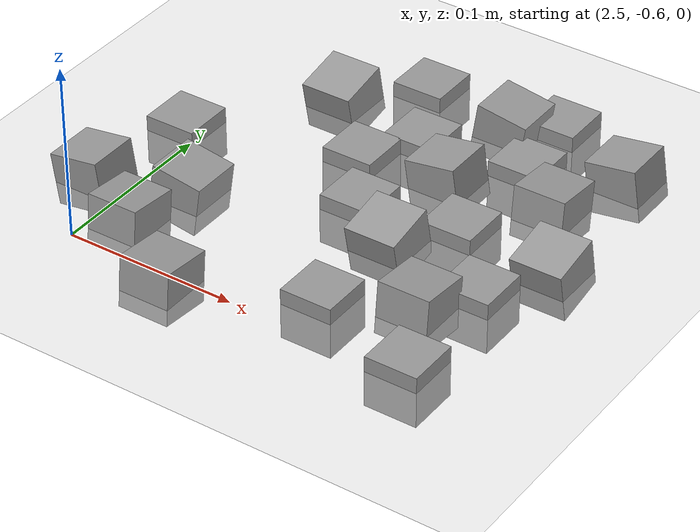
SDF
<sdf version="1.7">
 <world name="default">
  <model name="ground_plane">
   <static>1</static>
   <link name="link">
    <collision name="collision">
     <geometry><plane><normal>0 0 1</normal><size>100 100</size></plane></geometry>
     <surface><friction><ode><mu>100</mu><mu2>50</mu2></ode></friction></surface>
    </collision>
    <visual name="visual">
     <cast_shadows>0</cast_shadows>
     <geometry><plane><normal>0 0 1</normal><size>100 100</size></plane></geometry>
     <material>
      <script><uri>file://media/materials/scripts/gazebo.material</uri><name>Gazebo/Grey</name></script>
     </material>
    </visual>
   </link>
  </model>
  <model name="stone_road_6">
   <link name="link_0_clone_2_clone_2_clone_10">
    <inertial>
     <mass>1</mass>
     <inertia>
      <ixx>0.166667</ixx>
      <ixy>0</ixy>
      <ixz>0</ixz>
      <iyy>0.166667</iyy>
      <iyz>0</iyz>
      <izz>0.166667</izz>
     </inertia>
    </inertial>
    <pose>0.09869 0.163436 0.003778 0 -0.15 0</pose>
    <kinematic>1</kinematic>
    <visual name="visual">
     <geometry><box><size>0.03 0.03 0.03</size></box></geometry>
     <material>
      <lighting>1</lighting>
      <script><uri>file://media/materials/scripts/gazebo.material</uri><name>Gazebo/Grey</name></script>
      <shader type="pixel"><normal_map>__default__</normal_map></shader>
      <ambient>0.3 0.3 0.3 1</ambient>
      <diffuse>0.7 0.7 0.7 1</diffuse>
      <specular>0.01 0.01 0.01 1</specular>
      <emissive>0 0 0 1</emissive>
     </material>
    </visual>
    <collision name="collision">
     <geometry><box><size>0.03 0.03 0.03</size></box></geometry>
     <surface>
      <friction>
       <ode><mu>1</mu><mu2>1</mu2><fdir1>0 0 0</fdir1><slip1>0</slip1><slip2>0</slip2></ode>
       <torsional>
        <coefficient>1</coefficient>
        <patch_radius>0</patch_radius>
        <surface_radius>0</surface_radius>
        <use_patch_radius>1</use_patch_radius>
        <ode><slip>0</slip></ode>
       </torsional>
      </friction>
      <bounce><restitution_coefficient>0</restitution_coefficient><threshold>1e+06</threshold></bounce>
      <contact>
       <collide_without_contact>0</collide_without_contact>
       <collide_without_contact_bitmask>1</collide_without_contact_bitmask>
       <collide_bitmask>1</collide_bitmask>
       <ode>
        <soft_cfm>0</soft_cfm>
        <soft_erp>0.2</soft_erp>
        <kp>1e+13</kp>
        <kd>1</kd>
        <max_vel>0.01</max_vel>
        <min_depth>0</min_depth>
       </ode>
       <bullet>
        <split_impulse>1</split_impulse>
        <split_impulse_penetration_threshold>-0.01</split_impulse_penetration_threshold>
        <soft_cfm>0</soft_cfm>
        <soft_erp>0.2</soft_erp>
        <kp>1e+13</kp>
        <kd>1</kd>
       </bullet>
      </contact>
     </surface>
    </collision>
   </link>
   <link name="link_0_clone_2_clone_2_clone_13_clone">
    <inertial>
     <mass>1</mass>
     <inertia>
      <ixx>0.166667</ixx>
      <ixy>0</ixy>
      <ixz>0</ixz>
      <iyy>0.166667</iyy>
      <iyz>0</iyz>
      <izz>0.166667</izz>
     </inertia>
    </inertial>
    <pose>0.138846 0.140956 0.003778 -0.1 0 0</pose>
    <kinematic>1</kinematic>
    <visual name="visual">
     <geometry><box><size>0.03 0.03 0.03</size></box></geometry>
     <material>
      <lighting>1</lighting>
      <script><uri>file://media/materials/scripts/gazebo.material</uri><name>Gazebo/Grey</name></script>
      <shader type="pixel"><normal_map>__default__</normal_map></shader>
      <ambient>0.3 0.3 0.3 1</ambient>
      <diffuse>0.7 0.7 0.7 1</diffuse>
      <specular>0.01 0.01 0.01 1</specular>
      <emissive>0 0 0 1</emissive>
     </material>
    </visual>
    <collision name="collision">
     <geometry><box><size>0.03 0.03 0.03</size></box></geometry>
     <surface>
      <friction>
       <ode><mu>1</mu><mu2>1</mu2><fdir1>0 0 0</fdir1><slip1>0</slip1><slip2>0</slip2></ode>
       <torsional>
        <coefficient>1</coefficient>
        <patch_radius>0</patch_radius>
        <surface_radius>0</surface_radius>
        <use_patch_radius>1</use_patch_radius>
        <ode><slip>0</slip></ode>
       </torsional>
      </friction>
      <bounce><restitution_coefficient>0</restitution_coefficient><threshold>1e+06</threshold></bounce>
      <contact>
       <collide_without_contact>0</collide_without_contact>
       <collide_without_contact_bitmask>1</collide_without_contact_bitmask>
       <collide_bitmask>1</collide_bitmask>
       <ode>
        <soft_cfm>0</soft_cfm>
        <soft_erp>0.2</soft_erp>
        <kp>1e+13</kp>
        <kd>1</kd>
        <max_vel>0.01</max_vel>
        <min_depth>0</min_depth>
       </ode>
       <bullet>
        <split_impulse>1</split_impulse>
        <split_impulse_penetration_threshold>-0.01</split_impulse_penetration_threshold>
        <soft_cfm>0</soft_cfm>
        <soft_erp>0.2</soft_erp>
        <kp>1e+13</kp>
        <kd>1</kd>
       </bullet>
      </contact>
     </surface>
    </collision>
   </link>
   <link name="link_0_clone_2_clone_2_clone_13_clone_clone">
    <inertial>
     <mass>1</mass>
     <inertia>
      <ixx>0.166667</ixx>
      <ixy>0</ixy>
      <ixz>0</ixz>
      <iyy>0.166667</iyy>
      <iyz>0</iyz>
      <izz>0.166667</izz>
     </inertia>
    </inertial>
    <pose>0.184456 0.108712 0.003778 -0.1 0 0</pose>
    <kinematic>1</kinematic>
    <visual name="visual">
     <geometry><box><size>0.03 0.03 0.03</size></box></geometry>
     <material>
      <lighting>1</lighting>
      <script><uri>file://media/materials/scripts/gazebo.material</uri><name>Gazebo/Grey</name></script>
      <shader type="pixel"><normal_map>__default__</normal_map></shader>
      <ambient>0.3 0.3 0.3 1</ambient>
      <diffuse>0.7 0.7 0.7 1</diffuse>
      <specular>0.01 0.01 0.01 1</specular>
      <emissive>0 0 0 1</emissive>
     </material>
    </visual>
    <collision name="collision">
     <geometry><box><size>0.03 0.03 0.03</size></box></geometry>
     <surface>
      <friction>
       <ode><mu>1</mu><mu2>1</mu2><fdir1>0 0 0</fdir1><slip1>0</slip1><slip2>0</slip2></ode>
       <torsional>
        <coefficient>1</coefficient>
        <patch_radius>0</patch_radius>
        <surface_radius>0</surface_radius>
        <use_patch_radius>1</use_patch_radius>
        <ode><slip>0</slip></ode>
       </torsional>
      </friction>
      <bounce><restitution_coefficient>0</restitution_coefficient><threshold>1e+06</threshold></bounce>
      <contact>
       <collide_without_contact>0</collide_without_contact>
       <collide_without_contact_bitmask>1</collide_without_contact_bitmask>
       <collide_bitmask>1</collide_bitmask>
       <ode>
        <soft_cfm>0</soft_cfm>
        <soft_erp>0.2</soft_erp>
        <kp>1e+13</kp>
        <kd>1</kd>
        <max_vel>0.01</max_vel>
        <min_depth>0</min_depth>
       </ode>
       <bullet>
        <split_impulse>1</split_impulse>
        <split_impulse_penetration_threshold>-0.01</split_impulse_penetration_threshold>
        <soft_cfm>0</soft_cfm>
        <soft_erp>0.2</soft_erp>
        <kp>1e+13</kp>
        <kd>1</kd>
       </bullet>
      </contact>
     </surface>
    </collision>
   </link>
   <link name="link_0_clone_2_clone_2_clone_13_clone_clone_16">
    <inertial>
     <mass>1</mass>
     <inertia>
      <ixx>0.166667</ixx>
      <ixy>0</ixy>
      <ixz>0</ixz>
      <iyy>0.166667</iyy>
      <iyz>0</iyz>
      <izz>0.166667</izz>
     </inertia>
    </inertial>
    <pose>0.108948 0.22849 -0.006222 0 -0 0</pose>
    <kinematic>1</kinematic>
    <visual name="visual">
     <geometry><box><size>0.03 0.03 0.03</size></box></geometry>
     <material>
      <lighting>1</lighting>
      <script><uri>file://media/materials/scripts/gazebo.material</uri><name>Gazebo/Grey</name></script>
      <shader type="pixel"><normal_map>__default__</normal_map></shader>
      <ambient>0.3 0.3 0.3 1</ambient>
      <diffuse>0.7 0.7 0.7 1</diffuse>
      <specular>0.01 0.01 0.01 1</specular>
      <emissive>0 0 0 1</emissive>
     </material>
    </visual>
    <collision name="collision">
     <geometry><box><size>0.03 0.03 0.03</size></box></geometry>
     <surface>
      <friction>
       <ode><mu>1</mu><mu2>1</mu2><fdir1>0 0 0</fdir1><slip1>0</slip1><slip2>0</slip2></ode>
       <torsional>
        <coefficient>1</coefficient>
        <patch_radius>0</patch_radius>
        <surface_radius>0</surface_radius>
        <use_patch_radius>1</use_patch_radius>
        <ode><slip>0</slip></ode>
       </torsional>
      </friction>
      <bounce><restitution_coefficient>0</restitution_coefficient><threshold>1e+06</threshold></bounce>
      <contact>
       <collide_without_contact>0</collide_without_contact>
       <collide_without_contact_bitmask>1</collide_without_contact_bitmask>
       <collide_bitmask>1</collide_bitmask>
       <ode>
        <soft_cfm>0</soft_cfm>
        <soft_erp>0.2</soft_erp>
        <kp>1e+13</kp>
        <kd>1</kd>
        <max_vel>0.01</max_vel>
        <min_depth>0</min_depth>
       </ode>
       <bullet>
        <split_impulse>1</split_impulse>
        <split_impulse_penetration_threshold>-0.01</split_impulse_penetration_threshold>
        <soft_cfm>0</soft_cfm>
        <soft_erp>0.2</soft_erp>
        <kp>1e+13</kp>
        <kd>1</kd>
       </bullet>
      </contact>
     </surface>
    </collision>
   </link>
   <link name="link_0_clone_2_clone_9">
    <inertial>
     <mass>1</mass>
     <inertia>
      <ixx>0.166667</ixx>
      <ixy>0</ixy>
      <ixz>0</ixz>
      <iyy>0.166667</iyy>
      <iyz>0</iyz>
      <izz>0.166667</izz>
     </inertia>
    </inertial>
    <pose>0.148876 0.179752 0.003778 0 0.15 0</pose>
    <kinematic>1</kinematic>
    <visual name="visual">
     <geometry><box><size>0.03 0.03 0.03</size></box></geometry>
     <material>
      <lighting>1</lighting>
      <script><uri>file://media/materials/scripts/gazebo.material</uri><name>Gazebo/Grey</name></script>
      <shader type="pixel"><normal_map>__default__</normal_map></shader>
      <ambient>0.3 0.3 0.3 1</ambient>
      <diffuse>0.7 0.7 0.7 1</diffuse>
      <specular>0.01 0.01 0.01 1</specular>
      <emissive>0 0 0 1</emissive>
     </material>
    </visual>
    <collision name="collision">
     <geometry><box><size>0.03 0.03 0.03</size></box></geometry>
     <surface>
      <friction>
       <ode><mu>1</mu><mu2>1</mu2><fdir1>0 0 0</fdir1><slip1>0</slip1><slip2>0</slip2></ode>
       <torsional>
        <coefficient>1</coefficient>
        <patch_radius>0</patch_radius>
        <surface_radius>0</surface_radius>
        <use_patch_radius>1</use_patch_radius>
        <ode><slip>0</slip></ode>
       </torsional>
      </friction>
      <bounce><restitution_coefficient>0</restitution_coefficient><threshold>1e+06</threshold></bounce>
      <contact>
       <collide_without_contact>0</collide_without_contact>
       <collide_without_contact_bitmask>1</collide_without_contact_bitmask>
       <collide_bitmask>1</collide_bitmask>
       <ode>
        <soft_cfm>0</soft_cfm>
        <soft_erp>0.2</soft_erp>
        <kp>1e+13</kp>
        <kd>1</kd>
        <max_vel>0.01</max_vel>
        <min_depth>0</min_depth>
       </ode>
       <bullet>
        <split_impulse>1</split_impulse>
        <split_impulse_penetration_threshold>-0.01</split_impulse_penetration_threshold>
        <soft_cfm>0</soft_cfm>
        <soft_erp>0.2</soft_erp>
        <kp>1e+13</kp>
        <kd>1</kd>
       </bullet>
      </contact>
     </surface>
    </collision>
   </link>
   <static>0</static>
   <pose>2.379 -0.715905 -0 0 -0 0</pose>
  </model>
  <model name="stone_road_9">
   <link name="link_0_clone_0">
    <inertial>
     <mass>1</mass>
     <inertia>
      <ixx>0.166667</ixx>
      <ixy>0</ixy>
      <ixz>0</ixz>
      <iyy>0.166667</iyy>
      <iyz>0</iyz>
      <izz>0.166667</izz>
     </inertia>
    </inertial>
    <pose>-0.104982 -0.15412 0.003778 0.2 -0 0</pose>
    <kinematic>1</kinematic>
    <visual name="visual">
     <geometry><box><size>0.03 0.03 0.03</size></box></geometry>
     <material>
      <lighting>1</lighting>
      <script><uri>file://media/materials/scripts/gazebo.material</uri><name>Gazebo/Grey</name></script>
      <shader type="pixel"><normal_map>__default__</normal_map></shader>
      <ambient>0.3 0.3 0.3 1</ambient>
      <diffuse>0.7 0.7 0.7 1</diffuse>
      <specular>0.01 0.01 0.01 1</specular>
      <emissive>0 0 0 1</emissive>
     </material>
    </visual>
    <collision name="collision">
     <geometry><box><size>0.03 0.03 0.03</size></box></geometry>
     <surface>
      <friction>
       <ode><mu>1</mu><mu2>1</mu2><fdir1>0 0 0</fdir1><slip1>0</slip1><slip2>0</slip2></ode>
       <torsional>
        <coefficient>1</coefficient>
        <patch_radius>0</patch_radius>
        <surface_radius>0</surface_radius>
        <use_patch_radius>1</use_patch_radius>
        <ode><slip>0</slip></ode>
       </torsional>
      </friction>
      <bounce><restitution_coefficient>0</restitution_coefficient><threshold>1e+06</threshold></bounce>
      <contact>
       <collide_without_contact>0</collide_without_contact>
       <collide_without_contact_bitmask>1</collide_without_contact_bitmask>
       <collide_bitmask>1</collide_bitmask>
       <ode>
        <soft_cfm>0</soft_cfm>
        <soft_erp>0.2</soft_erp>
        <kp>1e+13</kp>
        <kd>1</kd>
        <max_vel>0.01</max_vel>
        <min_depth>0</min_depth>
       </ode>
       <bullet>
        <split_impulse>1</split_impulse>
        <split_impulse_penetration_threshold>-0.01</split_impulse_penetration_threshold>
        <soft_cfm>0</soft_cfm>
        <soft_erp>0.2</soft_erp>
        <kp>1e+13</kp>
        <kd>1</kd>
       </bullet>
      </contact>
     </surface>
    </collision>
   </link>
   <link name="link_0_clone_1">
    <inertial>
     <mass>1</mass>
     <inertia>
      <ixx>0.166667</ixx>
      <ixy>0</ixy>
      <ixz>0</ixz>
      <iyy>0.166667</iyy>
      <iyz>0</iyz>
      <izz>0.166667</izz>
     </inertia>
    </inertial>
    <pose>-0.022921 -0.129606 0.003778 0.2 -0 0</pose>
    <kinematic>1</kinematic>
    <visual name="visual">
     <geometry><box><size>0.03 0.03 0.03</size></box></geometry>
     <material>
      <lighting>1</lighting>
      <script><uri>file://media/materials/scripts/gazebo.material</uri><name>Gazebo/Grey</name></script>
      <shader type="pixel"><normal_map>__default__</normal_map></shader>
      <ambient>0.3 0.3 0.3 1</ambient>
      <diffuse>0.7 0.7 0.7 1</diffuse>
      <specular>0.01 0.01 0.01 1</specular>
      <emissive>0 0 0 1</emissive>
     </material>
    </visual>
    <collision name="collision">
     <geometry><box><size>0.03 0.03 0.03</size></box></geometry>
     <surface>
      <friction>
       <ode><mu>1</mu><mu2>1</mu2><fdir1>0 0 0</fdir1><slip1>0</slip1><slip2>0</slip2></ode>
       <torsional>
        <coefficient>1</coefficient>
        <patch_radius>0</patch_radius>
        <surface_radius>0</surface_radius>
        <use_patch_radius>1</use_patch_radius>
        <ode><slip>0</slip></ode>
       </torsional>
      </friction>
      <bounce><restitution_coefficient>0</restitution_coefficient><threshold>1e+06</threshold></bounce>
      <contact>
       <collide_without_contact>0</collide_without_contact>
       <collide_without_contact_bitmask>1</collide_without_contact_bitmask>
       <collide_bitmask>1</collide_bitmask>
       <ode>
        <soft_cfm>0</soft_cfm>
        <soft_erp>0.2</soft_erp>
        <kp>1e+13</kp>
        <kd>1</kd>
        <max_vel>0.01</max_vel>
        <min_depth>0</min_depth>
       </ode>
       <bullet>
        <split_impulse>1</split_impulse>
        <split_impulse_penetration_threshold>-0.01</split_impulse_penetration_threshold>
        <soft_cfm>0</soft_cfm>
        <soft_erp>0.2</soft_erp>
        <kp>1e+13</kp>
        <kd>1</kd>
       </bullet>
      </contact>
     </surface>
    </collision>
   </link>
   <link name="link_0_clone_2_clone">
    <inertial>
     <mass>1</mass>
     <inertia>
      <ixx>0.166667</ixx>
      <ixy>0</ixy>
      <ixz>0</ixz>
      <iyy>0.166667</iyy>
      <iyz>0</iyz>
      <izz>0.166667</izz>
     </inertia>
    </inertial>
    <pose>-0.10771 -0.03187 0.003778 0 0.15 0</pose>
    <kinematic>1</kinematic>
    <visual name="visual">
     <geometry><box><size>0.03 0.03 0.03</size></box></geometry>
     <material>
      <lighting>1</lighting>
      <script><uri>file://media/materials/scripts/gazebo.material</uri><name>Gazebo/Grey</name></script>
      <shader type="pixel"><normal_map>__default__</normal_map></shader>
      <ambient>0.3 0.3 0.3 1</ambient>
      <diffuse>0.7 0.7 0.7 1</diffuse>
      <specular>0.01 0.01 0.01 1</specular>
      <emissive>0 0 0 1</emissive>
     </material>
    </visual>
    <collision name="collision">
     <geometry><box><size>0.03 0.03 0.03</size></box></geometry>
     <surface>
      <friction>
       <ode><mu>1</mu><mu2>1</mu2><fdir1>0 0 0</fdir1><slip1>0</slip1><slip2>0</slip2></ode>
       <torsional>
        <coefficient>1</coefficient>
        <patch_radius>0</patch_radius>
        <surface_radius>0</surface_radius>
        <use_patch_radius>1</use_patch_radius>
        <ode><slip>0</slip></ode>
       </torsional>
      </friction>
      <bounce><restitution_coefficient>0</restitution_coefficient><threshold>1e+06</threshold></bounce>
      <contact>
       <collide_without_contact>0</collide_without_contact>
       <collide_without_contact_bitmask>1</collide_without_contact_bitmask>
       <collide_bitmask>1</collide_bitmask>
       <ode>
        <soft_cfm>0</soft_cfm>
        <soft_erp>0.2</soft_erp>
        <kp>1e+13</kp>
        <kd>1</kd>
        <max_vel>0.01</max_vel>
        <min_depth>0</min_depth>
       </ode>
       <bullet>
        <split_impulse>1</split_impulse>
        <split_impulse_penetration_threshold>-0.01</split_impulse_penetration_threshold>
        <soft_cfm>0</soft_cfm>
        <soft_erp>0.2</soft_erp>
        <kp>1e+13</kp>
        <kd>1</kd>
       </bullet>
      </contact>
     </surface>
    </collision>
   </link>
   <link name="link_0_clone_2_clone_2_clone_0">
    <inertial>
     <mass>1</mass>
     <inertia>
      <ixx>0.166667</ixx>
      <ixy>0</ixy>
      <ixz>0</ixz>
      <iyy>0.166667</iyy>
      <iyz>0</iyz>
      <izz>0.166667</izz>
     </inertia>
    </inertial>
    <pose>-0.032874 -0.039714 0.003778 0 -0.15 0</pose>
    <kinematic>1</kinematic>
    <visual name="visual">
     <geometry><box><size>0.03 0.03 0.03</size></box></geometry>
     <material>
      <lighting>1</lighting>
      <script><uri>file://media/materials/scripts/gazebo.material</uri><name>Gazebo/Grey</name></script>
      <shader type="pixel"><normal_map>__default__</normal_map></shader>
      <ambient>0.3 0.3 0.3 1</ambient>
      <diffuse>0.7 0.7 0.7 1</diffuse>
      <specular>0.01 0.01 0.01 1</specular>
      <emissive>0 0 0 1</emissive>
     </material>
    </visual>
    <collision name="collision">
     <geometry><box><size>0.03 0.03 0.03</size></box></geometry>
     <surface>
      <friction>
       <ode><mu>1</mu><mu2>1</mu2><fdir1>0 0 0</fdir1><slip1>0</slip1><slip2>0</slip2></ode>
       <torsional>
        <coefficient>1</coefficient>
        <patch_radius>0</patch_radius>
        <surface_radius>0</surface_radius>
        <use_patch_radius>1</use_patch_radius>
        <ode><slip>0</slip></ode>
       </torsional>
      </friction>
      <bounce><restitution_coefficient>0</restitution_coefficient><threshold>1e+06</threshold></bounce>
      <contact>
       <collide_without_contact>0</collide_without_contact>
       <collide_without_contact_bitmask>1</collide_without_contact_bitmask>
       <collide_bitmask>1</collide_bitmask>
       <ode>
        <soft_cfm>0</soft_cfm>
        <soft_erp>0.2</soft_erp>
        <kp>1e+13</kp>
        <kd>1</kd>
        <max_vel>0.01</max_vel>
        <min_depth>0</min_depth>
       </ode>
       <bullet>
        <split_impulse>1</split_impulse>
        <split_impulse_penetration_threshold>-0.01</split_impulse_penetration_threshold>
        <soft_cfm>0</soft_cfm>
        <soft_erp>0.2</soft_erp>
        <kp>1e+13</kp>
        <kd>1</kd>
       </bullet>
      </contact>
     </surface>
    </collision>
   </link>
   <link name="link_0_clone_2_clone_2_clone_13_clone_clone_16_clone_10">
    <inertial>
     <mass>1</mass>
     <inertia>
      <ixx>0.166667</ixx>
      <ixy>0</ixy>
      <ixz>0</ixz>
      <iyy>0.166667</iyy>
      <iyz>0</iyz>
      <izz>0.166667</izz>
     </inertia>
    </inertial>
    <pose>-0.082186 -0.05781 -0.006222 0 -0 0</pose>
    <kinematic>1</kinematic>
    <visual name="visual">
     <geometry><box><size>0.03 0.03 0.03</size></box></geometry>
     <material>
      <lighting>1</lighting>
      <script><uri>file://media/materials/scripts/gazebo.material</uri><name>Gazebo/Grey</name></script>
      <shader type="pixel"><normal_map>__default__</normal_map></shader>
      <ambient>0.3 0.3 0.3 1</ambient>
      <diffuse>0.7 0.7 0.7 1</diffuse>
      <specular>0.01 0.01 0.01 1</specular>
      <emissive>0 0 0 1</emissive>
     </material>
    </visual>
    <collision name="collision">
     <geometry><box><size>0.03 0.03 0.03</size></box></geometry>
     <surface>
      <friction>
       <ode><mu>1</mu><mu2>1</mu2><fdir1>0 0 0</fdir1><slip1>0</slip1><slip2>0</slip2></ode>
       <torsional>
        <coefficient>1</coefficient>
        <patch_radius>0</patch_radius>
        <surface_radius>0</surface_radius>
        <use_patch_radius>1</use_patch_radius>
        <ode><slip>0</slip></ode>
       </torsional>
      </friction>
      <bounce><restitution_coefficient>0</restitution_coefficient><threshold>1e+06</threshold></bounce>
      <contact>
       <collide_without_contact>0</collide_without_contact>
       <collide_without_contact_bitmask>1</collide_without_contact_bitmask>
       <collide_bitmask>1</collide_bitmask>
       <ode>
        <soft_cfm>0</soft_cfm>
        <soft_erp>0.2</soft_erp>
        <kp>1e+13</kp>
        <kd>1</kd>
        <max_vel>0.01</max_vel>
        <min_depth>0</min_depth>
       </ode>
       <bullet>
        <split_impulse>1</split_impulse>
        <split_impulse_penetration_threshold>-0.01</split_impulse_penetration_threshold>
        <soft_cfm>0</soft_cfm>
        <soft_erp>0.2</soft_erp>
        <kp>1e+13</kp>
        <kd>1</kd>
       </bullet>
      </contact>
     </surface>
    </collision>
   </link>
   <link name="link_0_clone_2_clone_2_clone_13_clone_clone_16_clone_11">
    <inertial>
     <mass>1</mass>
     <inertia>
      <ixx>0.166667</ixx>
      <ixy>0</ixy>
      <ixz>0</ixz>
      <iyy>0.166667</iyy>
      <iyz>0</iyz>
      <izz>0.166667</izz>
     </inertia>
    </inertial>
    <pose>-0.141844 -0.066911 -0.006222 0 -0 0</pose>
    <kinematic>1</kinematic>
    <visual name="visual">
     <geometry><box><size>0.03 0.03 0.03</size></box></geometry>
     <material>
      <lighting>1</lighting>
      <script><uri>file://media/materials/scripts/gazebo.material</uri><name>Gazebo/Grey</name></script>
      <shader type="pixel"><normal_map>__default__</normal_map></shader>
      <ambient>0.3 0.3 0.3 1</ambient>
      <diffuse>0.7 0.7 0.7 1</diffuse>
      <specular>0.01 0.01 0.01 1</specular>
      <emissive>0 0 0 1</emissive>
     </material>
    </visual>
    <collision name="collision">
     <geometry><box><size>0.03 0.03 0.03</size></box></geometry>
     <surface>
      <friction>
       <ode><mu>1</mu><mu2>1</mu2><fdir1>0 0 0</fdir1><slip1>0</slip1><slip2>0</slip2></ode>
       <torsional>
        <coefficient>1</coefficient>
        <patch_radius>0</patch_radius>
        <surface_radius>0</surface_radius>
        <use_patch_radius>1</use_patch_radius>
        <ode><slip>0</slip></ode>
       </torsional>
      </friction>
      <bounce><restitution_coefficient>0</restitution_coefficient><threshold>1e+06</threshold></bounce>
      <contact>
       <collide_without_contact>0</collide_without_contact>
       <collide_without_contact_bitmask>1</collide_without_contact_bitmask>
       <collide_bitmask>1</collide_bitmask>
       <ode>
        <soft_cfm>0</soft_cfm>
        <soft_erp>0.2</soft_erp>
        <kp>1e+13</kp>
        <kd>1</kd>
        <max_vel>0.01</max_vel>
        <min_depth>0</min_depth>
       </ode>
       <bullet>
        <split_impulse>1</split_impulse>
        <split_impulse_penetration_threshold>-0.01</split_impulse_penetration_threshold>
        <soft_cfm>0</soft_cfm>
        <soft_erp>0.2</soft_erp>
        <kp>1e+13</kp>
        <kd>1</kd>
       </bullet>
      </contact>
     </surface>
    </collision>
   </link>
   <link name="link_0_clone_2_clone_2_clone_13_clone_clone_16_clone_12">
    <inertial>
     <mass>1</mass>
     <inertia>
      <ixx>0.166667</ixx>
      <ixy>0</ixy>
      <ixz>0</ixz>
      <iyy>0.166667</iyy>
      <iyz>0</iyz>
      <izz>0.166667</izz>
     </inertia>
    </inertial>
    <pose>-0.164908 -0.022947 -0.006222 0 -0 0</pose>
    <kinematic>1</kinematic>
    <visual name="visual">
     <geometry><box><size>0.03 0.03 0.03</size></box></geometry>
     <material>
      <lighting>1</lighting>
      <script><uri>file://media/materials/scripts/gazebo.material</uri><name>Gazebo/Grey</name></script>
      <shader type="pixel"><normal_map>__default__</normal_map></shader>
      <ambient>0.3 0.3 0.3 1</ambient>
      <diffuse>0.7 0.7 0.7 1</diffuse>
      <specular>0.01 0.01 0.01 1</specular>
      <emissive>0 0 0 1</emissive>
     </material>
    </visual>
    <collision name="collision">
     <geometry><box><size>0.03 0.03 0.03</size></box></geometry>
     <surface>
      <friction>
       <ode><mu>1</mu><mu2>1</mu2><fdir1>0 0 0</fdir1><slip1>0</slip1><slip2>0</slip2></ode>
       <torsional>
        <coefficient>1</coefficient>
        <patch_radius>0</patch_radius>
        <surface_radius>0</surface_radius>
        <use_patch_radius>1</use_patch_radius>
        <ode><slip>0</slip></ode>
       </torsional>
      </friction>
      <bounce><restitution_coefficient>0</restitution_coefficient><threshold>1e+06</threshold></bounce>
      <contact>
       <collide_without_contact>0</collide_without_contact>
       <collide_without_contact_bitmask>1</collide_without_contact_bitmask>
       <collide_bitmask>1</collide_bitmask>
       <ode>
        <soft_cfm>0</soft_cfm>
        <soft_erp>0.2</soft_erp>
        <kp>1e+13</kp>
        <kd>1</kd>
        <max_vel>0.01</max_vel>
        <min_depth>0</min_depth>
       </ode>
       <bullet>
        <split_impulse>1</split_impulse>
        <split_impulse_penetration_threshold>-0.01</split_impulse_penetration_threshold>
        <soft_cfm>0</soft_cfm>
        <soft_erp>0.2</soft_erp>
        <kp>1e+13</kp>
        <kd>1</kd>
       </bullet>
      </contact>
     </surface>
    </collision>
   </link>
   <link name="link_0_clone_2_clone_2_clone_13_clone_clone_16_clone_27">
    <inertial>
     <mass>1</mass>
     <inertia>
      <ixx>0.166667</ixx>
      <ixy>0</ixy>
      <ixz>0</ixz>
      <iyy>0.166667</iyy>
      <iyz>0</iyz>
      <izz>0.166667</izz>
     </inertia>
    </inertial>
    <pose>-0.137316 -0.132225 -0.006222 0 -0 0</pose>
    <kinematic>1</kinematic>
    <visual name="visual">
     <geometry><box><size>0.03 0.03 0.03</size></box></geometry>
     <material>
      <lighting>1</lighting>
      <script><uri>file://media/materials/scripts/gazebo.material</uri><name>Gazebo/Grey</name></script>
      <shader type="pixel"><normal_map>__default__</normal_map></shader>
      <ambient>0.3 0.3 0.3 1</ambient>
      <diffuse>0.7 0.7 0.7 1</diffuse>
      <specular>0.01 0.01 0.01 1</specular>
      <emissive>0 0 0 1</emissive>
     </material>
    </visual>
    <collision name="collision">
     <geometry><box><size>0.03 0.03 0.03</size></box></geometry>
     <surface>
      <friction>
       <ode><mu>1</mu><mu2>1</mu2><fdir1>0 0 0</fdir1><slip1>0</slip1><slip2>0</slip2></ode>
       <torsional>
        <coefficient>1</coefficient>
        <patch_radius>0</patch_radius>
        <surface_radius>0</surface_radius>
        <use_patch_radius>1</use_patch_radius>
        <ode><slip>0</slip></ode>
       </torsional>
      </friction>
      <bounce><restitution_coefficient>0</restitution_coefficient><threshold>1e+06</threshold></bounce>
      <contact>
       <collide_without_contact>0</collide_without_contact>
       <collide_without_contact_bitmask>1</collide_without_contact_bitmask>
       <collide_bitmask>1</collide_bitmask>
       <ode>
        <soft_cfm>0</soft_cfm>
        <soft_erp>0.2</soft_erp>
        <kp>1e+13</kp>
        <kd>1</kd>
        <max_vel>0.01</max_vel>
        <min_depth>0</min_depth>
       </ode>
       <bullet>
        <split_impulse>1</split_impulse>
        <split_impulse_penetration_threshold>-0.01</split_impulse_penetration_threshold>
        <soft_cfm>0</soft_cfm>
        <soft_erp>0.2</soft_erp>
        <kp>1e+13</kp>
        <kd>1</kd>
       </bullet>
      </contact>
     </surface>
    </collision>
   </link>
   <link name="link_0_clone_2_clone_2_clone_13_clone_clone_16_clone_28">
    <inertial>
     <mass>1</mass>
     <inertia>
      <ixx>0.166667</ixx>
      <ixy>0</ixy>
      <ixz>0</ixz>
      <iyy>0.166667</iyy>
      <iyz>0</iyz>
      <izz>0.166667</izz>
     </inertia>
    </inertial>
    <pose>-0.10708 -0.209042 -0.006222 0 -0 0</pose>
    <kinematic>1</kinematic>
    <visual name="visual">
     <geometry><box><size>0.03 0.03 0.03</size></box></geometry>
     <material>
      <lighting>1</lighting>
      <script><uri>file://media/materials/scripts/gazebo.material</uri><name>Gazebo/Grey</name></script>
      <shader type="pixel"><normal_map>__default__</normal_map></shader>
      <ambient>0.3 0.3 0.3 1</ambient>
      <diffuse>0.7 0.7 0.7 1</diffuse>
      <specular>0.01 0.01 0.01 1</specular>
      <emissive>0 0 0 1</emissive>
     </material>
    </visual>
    <collision name="collision">
     <geometry><box><size>0.03 0.03 0.03</size></box></geometry>
     <surface>
      <friction>
       <ode><mu>1</mu><mu2>1</mu2><fdir1>0 0 0</fdir1><slip1>0</slip1><slip2>0</slip2></ode>
       <torsional>
        <coefficient>1</coefficient>
        <patch_radius>0</patch_radius>
        <surface_radius>0</surface_radius>
        <use_patch_radius>1</use_patch_radius>
        <ode><slip>0</slip></ode>
       </torsional>
      </friction>
      <bounce><restitution_coefficient>0</restitution_coefficient><threshold>1e+06</threshold></bounce>
      <contact>
       <collide_without_contact>0</collide_without_contact>
       <collide_without_contact_bitmask>1</collide_without_contact_bitmask>
       <collide_bitmask>1</collide_bitmask>
       <ode>
        <soft_cfm>0</soft_cfm>
        <soft_erp>0.2</soft_erp>
        <kp>1e+13</kp>
        <kd>1</kd>
        <max_vel>0.01</max_vel>
        <min_depth>0</min_depth>
       </ode>
       <bullet>
        <split_impulse>1</split_impulse>
        <split_impulse_penetration_threshold>-0.01</split_impulse_penetration_threshold>
        <soft_cfm>0</soft_cfm>
        <soft_erp>0.2</soft_erp>
        <kp>1e+13</kp>
        <kd>1</kd>
       </bullet>
      </contact>
     </surface>
    </collision>
   </link>
   <link name="link_0_clone_2_clone_2_clone_13_clone_clone_16_clone_29">
    <inertial>
     <mass>1</mass>
     <inertia>
      <ixx>0.166667</ixx>
      <ixy>0</ixy>
      <ixz>0</ixz>
      <iyy>0.166667</iyy>
      <iyz>0</iyz>
      <izz>0.166667</izz>
     </inertia>
    </inertial>
    <pose>-0.042964 -0.229632 -0.006222 0 -0 0</pose>
    <kinematic>1</kinematic>
    <visual name="visual">
     <geometry><box><size>0.03 0.03 0.03</size></box></geometry>
     <material>
      <lighting>1</lighting>
      <script><uri>file://media/materials/scripts/gazebo.material</uri><name>Gazebo/Grey</name></script>
      <shader type="pixel"><normal_map>__default__</normal_map></shader>
      <ambient>0.3 0.3 0.3 1</ambient>
      <diffuse>0.7 0.7 0.7 1</diffuse>
      <specular>0.01 0.01 0.01 1</specular>
      <emissive>0 0 0 1</emissive>
     </material>
    </visual>
    <collision name="collision">
     <geometry><box><size>0.03 0.03 0.03</size></box></geometry>
     <surface>
      <friction>
       <ode><mu>1</mu><mu2>1</mu2><fdir1>0 0 0</fdir1><slip1>0</slip1><slip2>0</slip2></ode>
       <torsional>
        <coefficient>1</coefficient>
        <patch_radius>0</patch_radius>
        <surface_radius>0</surface_radius>
        <use_patch_radius>1</use_patch_radius>
        <ode><slip>0</slip></ode>
       </torsional>
      </friction>
      <bounce><restitution_coefficient>0</restitution_coefficient><threshold>1e+06</threshold></bounce>
      <contact>
       <collide_without_contact>0</collide_without_contact>
       <collide_without_contact_bitmask>1</collide_without_contact_bitmask>
       <collide_bitmask>1</collide_bitmask>
       <ode>
        <soft_cfm>0</soft_cfm>
        <soft_erp>0.2</soft_erp>
        <kp>1e+13</kp>
        <kd>1</kd>
        <max_vel>0.01</max_vel>
        <min_depth>0</min_depth>
       </ode>
       <bullet>
        <split_impulse>1</split_impulse>
        <split_impulse_penetration_threshold>-0.01</split_impulse_penetration_threshold>
        <soft_cfm>0</soft_cfm>
        <soft_erp>0.2</soft_erp>
        <kp>1e+13</kp>
        <kd>1</kd>
       </bullet>
      </contact>
     </surface>
    </collision>
   </link>
   <link name="link_0_clone_2_clone_2_clone_13_clone_clone_16_clone_30">
    <inertial>
     <mass>1</mass>
     <inertia>
      <ixx>0.166667</ixx>
      <ixy>0</ixy>
      <ixz>0</ixz>
      <iyy>0.166667</iyy>
      <iyz>0</iyz>
      <izz>0.166667</izz>
     </inertia>
    </inertial>
    <pose>-0.160879 -0.095951 -0.006222 0 -0 0</pose>
    <kinematic>1</kinematic>
    <visual name="visual">
     <geometry><box><size>0.03 0.03 0.03</size></box></geometry>
     <material>
      <lighting>1</lighting>
      <script><uri>file://media/materials/scripts/gazebo.material</uri><name>Gazebo/Grey</name></script>
      <shader type="pixel"><normal_map>__default__</normal_map></shader>
      <ambient>0.3 0.3 0.3 1</ambient>
      <diffuse>0.7 0.7 0.7 1</diffuse>
      <specular>0.01 0.01 0.01 1</specular>
      <emissive>0 0 0 1</emissive>
     </material>
    </visual>
    <collision name="collision">
     <geometry><box><size>0.03 0.03 0.03</size></box></geometry>
     <surface>
      <friction>
       <ode><mu>1</mu><mu2>1</mu2><fdir1>0 0 0</fdir1><slip1>0</slip1><slip2>0</slip2></ode>
       <torsional>
        <coefficient>1</coefficient>
        <patch_radius>0</patch_radius>
        <surface_radius>0</surface_radius>
        <use_patch_radius>1</use_patch_radius>
        <ode><slip>0</slip></ode>
       </torsional>
      </friction>
      <bounce><restitution_coefficient>0</restitution_coefficient><threshold>1e+06</threshold></bounce>
      <contact>
       <collide_without_contact>0</collide_without_contact>
       <collide_without_contact_bitmask>1</collide_without_contact_bitmask>
       <collide_bitmask>1</collide_bitmask>
       <ode>
        <soft_cfm>0</soft_cfm>
        <soft_erp>0.2</soft_erp>
        <kp>1e+13</kp>
        <kd>1</kd>
        <max_vel>0.01</max_vel>
        <min_depth>0</min_depth>
       </ode>
       <bullet>
        <split_impulse>1</split_impulse>
        <split_impulse_penetration_threshold>-0.01</split_impulse_penetration_threshold>
        <soft_cfm>0</soft_cfm>
        <soft_erp>0.2</soft_erp>
        <kp>1e+13</kp>
        <kd>1</kd>
       </bullet>
      </contact>
     </surface>
    </collision>
   </link>
   <link name="link_0_clone_2_clone_2_clone_13_clone_clone_16_clone_5">
    <inertial>
     <mass>1</mass>
     <inertia>
      <ixx>0.166667</ixx>
      <ixy>0</ixy>
      <ixz>0</ixz>
      <iyy>0.166667</iyy>
      <iyz>0</iyz>
      <izz>0.166667</izz>
     </inertia>
    </inertial>
    <pose>-0.086674 -0.014784 -0.006222 0 -0 0</pose>
    <kinematic>1</kinematic>
    <visual name="visual">
     <geometry><box><size>0.03 0.03 0.03</size></box></geometry>
     <material>
      <lighting>1</lighting>
      <script><uri>file://media/materials/scripts/gazebo.material</uri><name>Gazebo/Grey</name></script>
      <shader type="pixel"><normal_map>__default__</normal_map></shader>
      <ambient>0.3 0.3 0.3 1</ambient>
      <diffuse>0.7 0.7 0.7 1</diffuse>
      <specular>0.01 0.01 0.01 1</specular>
      <emissive>0 0 0 1</emissive>
     </material>
    </visual>
    <collision name="collision">
     <geometry><box><size>0.03 0.03 0.03</size></box></geometry>
     <surface>
      <friction>
       <ode><mu>1</mu><mu2>1</mu2><fdir1>0 0 0</fdir1><slip1>0</slip1><slip2>0</slip2></ode>
       <torsional>
        <coefficient>1</coefficient>
        <patch_radius>0</patch_radius>
        <surface_radius>0</surface_radius>
        <use_patch_radius>1</use_patch_radius>
        <ode><slip>0</slip></ode>
       </torsional>
      </friction>
      <bounce><restitution_coefficient>0</restitution_coefficient><threshold>1e+06</threshold></bounce>
      <contact>
       <collide_without_contact>0</collide_without_contact>
       <collide_without_contact_bitmask>1</collide_without_contact_bitmask>
       <collide_bitmask>1</collide_bitmask>
       <ode>
        <soft_cfm>0</soft_cfm>
        <soft_erp>0.2</soft_erp>
        <kp>1e+13</kp>
        <kd>1</kd>
        <max_vel>0.01</max_vel>
        <min_depth>0</min_depth>
       </ode>
       <bullet>
        <split_impulse>1</split_impulse>
        <split_impulse_penetration_threshold>-0.01</split_impulse_penetration_threshold>
        <soft_cfm>0</soft_cfm>
        <soft_erp>0.2</soft_erp>
        <kp>1e+13</kp>
        <kd>1</kd>
       </bullet>
      </contact>
     </surface>
    </collision>
   </link>
   <link name="link_0_clone_2_clone_2_clone_13_clone_clone_16_clone_8">
    <inertial>
     <mass>1</mass>
     <inertia>
      <ixx>0.166667</ixx>
      <ixy>0</ixy>
      <ixz>0</ixz>
      <iyy>0.166667</iyy>
      <iyz>0</iyz>
      <izz>0.166667</izz>
     </inertia>
    </inertial>
    <pose>-0.045715 -0.162471 -0.006222 0 -0 0</pose>
    <kinematic>1</kinematic>
    <visual name="visual">
     <geometry><box><size>0.03 0.03 0.03</size></box></geometry>
     <material>
      <lighting>1</lighting>
      <script><uri>file://media/materials/scripts/gazebo.material</uri><name>Gazebo/Grey</name></script>
      <shader type="pixel"><normal_map>__default__</normal_map></shader>
      <ambient>0.3 0.3 0.3 1</ambient>
      <diffuse>0.7 0.7 0.7 1</diffuse>
      <specular>0.01 0.01 0.01 1</specular>
      <emissive>0 0 0 1</emissive>
     </material>
    </visual>
    <collision name="collision">
     <geometry><box><size>0.03 0.03 0.03</size></box></geometry>
     <surface>
      <friction>
       <ode><mu>1</mu><mu2>1</mu2><fdir1>0 0 0</fdir1><slip1>0</slip1><slip2>0</slip2></ode>
       <torsional>
        <coefficient>1</coefficient>
        <patch_radius>0</patch_radius>
        <surface_radius>0</surface_radius>
        <use_patch_radius>1</use_patch_radius>
        <ode><slip>0</slip></ode>
       </torsional>
      </friction>
      <bounce><restitution_coefficient>0</restitution_coefficient><threshold>1e+06</threshold></bounce>
      <contact>
       <collide_without_contact>0</collide_without_contact>
       <collide_without_contact_bitmask>1</collide_without_contact_bitmask>
       <collide_bitmask>1</collide_bitmask>
       <ode>
        <soft_cfm>0</soft_cfm>
        <soft_erp>0.2</soft_erp>
        <kp>1e+13</kp>
        <kd>1</kd>
        <max_vel>0.01</max_vel>
        <min_depth>0</min_depth>
       </ode>
       <bullet>
        <split_impulse>1</split_impulse>
        <split_impulse_penetration_threshold>-0.01</split_impulse_penetration_threshold>
        <soft_cfm>0</soft_cfm>
        <soft_erp>0.2</soft_erp>
        <kp>1e+13</kp>
        <kd>1</kd>
       </bullet>
      </contact>
     </surface>
    </collision>
   </link>
   <link name="link_0_clone_2_clone_2_clone_13_clone_clone_16_clone_9">
    <inertial>
     <mass>1</mass>
     <inertia>
      <ixx>0.166667</ixx>
      <ixy>0</ixy>
      <ixz>0</ixz>
      <iyy>0.166667</iyy>
      <iyz>0</iyz>
      <izz>0.166667</izz>
     </inertia>
    </inertial>
    <pose>-0.081689 -0.122641 -0.006222 0 -0 0</pose>
    <kinematic>1</kinematic>
    <visual name="visual">
     <geometry><box><size>0.03 0.03 0.03</size></box></geometry>
     <material>
      <lighting>1</lighting>
      <script><uri>file://media/materials/scripts/gazebo.material</uri><name>Gazebo/Grey</name></script>
      <shader type="pixel"><normal_map>__default__</normal_map></shader>
      <ambient>0.3 0.3 0.3 1</ambient>
      <diffuse>0.7 0.7 0.7 1</diffuse>
      <specular>0.01 0.01 0.01 1</specular>
      <emissive>0 0 0 1</emissive>
     </material>
    </visual>
    <collision name="collision">
     <geometry><box><size>0.03 0.03 0.03</size></box></geometry>
     <surface>
      <friction>
       <ode><mu>1</mu><mu2>1</mu2><fdir1>0 0 0</fdir1><slip1>0</slip1><slip2>0</slip2></ode>
       <torsional>
        <coefficient>1</coefficient>
        <patch_radius>0</patch_radius>
        <surface_radius>0</surface_radius>
        <use_patch_radius>1</use_patch_radius>
        <ode><slip>0</slip></ode>
       </torsional>
      </friction>
      <bounce><restitution_coefficient>0</restitution_coefficient><threshold>1e+06</threshold></bounce>
      <contact>
       <collide_without_contact>0</collide_without_contact>
       <collide_without_contact_bitmask>1</collide_without_contact_bitmask>
       <collide_bitmask>1</collide_bitmask>
       <ode>
        <soft_cfm>0</soft_cfm>
        <soft_erp>0.2</soft_erp>
        <kp>1e+13</kp>
        <kd>1</kd>
        <max_vel>0.01</max_vel>
        <min_depth>0</min_depth>
       </ode>
       <bullet>
        <split_impulse>1</split_impulse>
        <split_impulse_penetration_threshold>-0.01</split_impulse_penetration_threshold>
        <soft_cfm>0</soft_cfm>
        <soft_erp>0.2</soft_erp>
        <kp>1e+13</kp>
        <kd>1</kd>
       </bullet>
      </contact>
     </surface>
    </collision>
   </link>
   <link name="link_0_clone_2_clone_2_clone_13_clone_clone_8">
    <inertial>
     <mass>1</mass>
     <inertia>
      <ixx>0.166667</ixx>
      <ixy>0</ixy>
      <ixz>0</ixz>
      <iyy>0.166667</iyy>
      <iyz>0</iyz>
      <izz>0.166667</izz>
     </inertia>
    </inertial>
    <pose>-0.051207 -0.083778 0.003778 -0.1 0 0</pose>
    <kinematic>1</kinematic>
    <visual name="visual">
     <geometry><box><size>0.03 0.03 0.03</size></box></geometry>
     <material>
      <lighting>1</lighting>
      <script><uri>file://media/materials/scripts/gazebo.material</uri><name>Gazebo/Grey</name></script>
      <shader type="pixel"><normal_map>__default__</normal_map></shader>
      <ambient>0.3 0.3 0.3 1</ambient>
      <diffuse>0.7 0.7 0.7 1</diffuse>
      <specular>0.01 0.01 0.01 1</specular>
      <emissive>0 0 0 1</emissive>
     </material>
    </visual>
    <collision name="collision">
     <geometry><box><size>0.03 0.03 0.03</size></box></geometry>
     <surface>
      <friction>
       <ode><mu>1</mu><mu2>1</mu2><fdir1>0 0 0</fdir1><slip1>0</slip1><slip2>0</slip2></ode>
       <torsional>
        <coefficient>1</coefficient>
        <patch_radius>0</patch_radius>
        <surface_radius>0</surface_radius>
        <use_patch_radius>1</use_patch_radius>
        <ode><slip>0</slip></ode>
       </torsional>
      </friction>
      <bounce><restitution_coefficient>0</restitution_coefficient><threshold>1e+06</threshold></bounce>
      <contact>
       <collide_without_contact>0</collide_without_contact>
       <collide_without_contact_bitmask>1</collide_without_contact_bitmask>
       <collide_bitmask>1</collide_bitmask>
       <ode>
        <soft_cfm>0</soft_cfm>
        <soft_erp>0.2</soft_erp>
        <kp>1e+13</kp>
        <kd>1</kd>
        <max_vel>0.01</max_vel>
        <min_depth>0</min_depth>
       </ode>
       <bullet>
        <split_impulse>1</split_impulse>
        <split_impulse_penetration_threshold>-0.01</split_impulse_penetration_threshold>
        <soft_cfm>0</soft_cfm>
        <soft_erp>0.2</soft_erp>
        <kp>1e+13</kp>
        <kd>1</kd>
       </bullet>
      </contact>
     </surface>
    </collision>
   </link>
   <link name="link_0_clone_2_clone_2_clone_13_clone_clone_9">
    <inertial>
     <mass>1</mass>
     <inertia>
      <ixx>0.166667</ixx>
      <ixy>0</ixy>
      <ixz>0</ixz>
      <iyy>0.166667</iyy>
      <iyz>0</iyz>
      <izz>0.166667</izz>
     </inertia>
    </inertial>
    <pose>-0.062692 -0.190617 0.003778 -0.1 0 0</pose>
    <kinematic>1</kinematic>
    <visual name="visual">
     <geometry><box><size>0.03 0.03 0.03</size></box></geometry>
     <material>
      <lighting>1</lighting>
      <script><uri>file://media/materials/scripts/gazebo.material</uri><name>Gazebo/Grey</name></script>
      <shader type="pixel"><normal_map>__default__</normal_map></shader>
      <ambient>0.3 0.3 0.3 1</ambient>
      <diffuse>0.7 0.7 0.7 1</diffuse>
      <specular>0.01 0.01 0.01 1</specular>
      <emissive>0 0 0 1</emissive>
     </material>
    </visual>
    <collision name="collision">
     <geometry><box><size>0.03 0.03 0.03</size></box></geometry>
     <surface>
      <friction>
       <ode><mu>1</mu><mu2>1</mu2><fdir1>0 0 0</fdir1><slip1>0</slip1><slip2>0</slip2></ode>
       <torsional>
        <coefficient>1</coefficient>
        <patch_radius>0</patch_radius>
        <surface_radius>0</surface_radius>
        <use_patch_radius>1</use_patch_radius>
        <ode><slip>0</slip></ode>
       </torsional>
      </friction>
      <bounce><restitution_coefficient>0</restitution_coefficient><threshold>1e+06</threshold></bounce>
      <contact>
       <collide_without_contact>0</collide_without_contact>
       <collide_without_contact_bitmask>1</collide_without_contact_bitmask>
       <collide_bitmask>1</collide_bitmask>
       <ode>
        <soft_cfm>0</soft_cfm>
        <soft_erp>0.2</soft_erp>
        <kp>1e+13</kp>
        <kd>1</kd>
        <max_vel>0.01</max_vel>
        <min_depth>0</min_depth>
       </ode>
       <bullet>
        <split_impulse>1</split_impulse>
        <split_impulse_penetration_threshold>-0.01</split_impulse_penetration_threshold>
        <soft_cfm>0</soft_cfm>
        <soft_erp>0.2</soft_erp>
        <kp>1e+13</kp>
        <kd>1</kd>
       </bullet>
      </contact>
     </surface>
    </collision>
   </link>
   <link name="link_0_clone_2_clone_2_clone_3">
    <inertial>
     <mass>1</mass>
     <inertia>
      <ixx>0.166667</ixx>
      <ixy>0</ixy>
      <ixz>0</ixz>
      <iyy>0.166667</iyy>
      <iyz>0</iyz>
      <izz>0.166667</izz>
     </inertia>
    </inertial>
    <pose>-0.110514 -0.090915 0.003778 0 -0.15 0</pose>
    <kinematic>1</kinematic>
    <visual name="visual">
     <geometry><box><size>0.03 0.03 0.03</size></box></geometry>
     <material>
      <lighting>1</lighting>
      <script><uri>file://media/materials/scripts/gazebo.material</uri><name>Gazebo/Grey</name></script>
      <shader type="pixel"><normal_map>__default__</normal_map></shader>
      <ambient>0.3 0.3 0.3 1</ambient>
      <diffuse>0.7 0.7 0.7 1</diffuse>
      <specular>0.01 0.01 0.01 1</specular>
      <emissive>0 0 0 1</emissive>
     </material>
    </visual>
    <collision name="collision">
     <geometry><box><size>0.03 0.03 0.03</size></box></geometry>
     <surface>
      <friction>
       <ode><mu>1</mu><mu2>1</mu2><fdir1>0 0 0</fdir1><slip1>0</slip1><slip2>0</slip2></ode>
       <torsional>
        <coefficient>1</coefficient>
        <patch_radius>0</patch_radius>
        <surface_radius>0</surface_radius>
        <use_patch_radius>1</use_patch_radius>
        <ode><slip>0</slip></ode>
       </torsional>
      </friction>
      <bounce><restitution_coefficient>0</restitution_coefficient><threshold>1e+06</threshold></bounce>
      <contact>
       <collide_without_contact>0</collide_without_contact>
       <collide_without_contact_bitmask>1</collide_without_contact_bitmask>
       <collide_bitmask>1</collide_bitmask>
       <ode>
        <soft_cfm>0</soft_cfm>
        <soft_erp>0.2</soft_erp>
        <kp>1e+13</kp>
        <kd>1</kd>
        <max_vel>0.01</max_vel>
        <min_depth>0</min_depth>
       </ode>
       <bullet>
        <split_impulse>1</split_impulse>
        <split_impulse_penetration_threshold>-0.01</split_impulse_penetration_threshold>
        <soft_cfm>0</soft_cfm>
        <soft_erp>0.2</soft_erp>
        <kp>1e+13</kp>
        <kd>1</kd>
       </bullet>
      </contact>
     </surface>
    </collision>
   </link>
   <link name="link_0_clone_6">
    <inertial>
     <mass>1</mass>
     <inertia>
      <ixx>0.166667</ixx>
      <ixy>0</ixy>
      <ixz>0</ixz>
      <iyy>0.166667</iyy>
      <iyz>0</iyz>
      <izz>0.166667</izz>
     </inertia>
    </inertial>
    <pose>-0.198423 -0.058498 0.003778 0.2 -0 0</pose>
    <kinematic>1</kinematic>
    <visual name="visual">
     <geometry><box><size>0.03 0.03 0.03</size></box></geometry>
     <material>
      <lighting>1</lighting>
      <script><uri>file://media/materials/scripts/gazebo.material</uri><name>Gazebo/Grey</name></script>
      <shader type="pixel"><normal_map>__default__</normal_map></shader>
      <ambient>0.3 0.3 0.3 1</ambient>
      <diffuse>0.7 0.7 0.7 1</diffuse>
      <specular>0.01 0.01 0.01 1</specular>
      <emissive>0 0 0 1</emissive>
     </material>
    </visual>
    <collision name="collision">
     <geometry><box><size>0.03 0.03 0.03</size></box></geometry>
     <surface>
      <friction>
       <ode><mu>1</mu><mu2>1</mu2><fdir1>0 0 0</fdir1><slip1>0</slip1><slip2>0</slip2></ode>
       <torsional>
        <coefficient>1</coefficient>
        <patch_radius>0</patch_radius>
        <surface_radius>0</surface_radius>
        <use_patch_radius>1</use_patch_radius>
        <ode><slip>0</slip></ode>
       </torsional>
      </friction>
      <bounce><restitution_coefficient>0</restitution_coefficient><threshold>1e+06</threshold></bounce>
      <contact>
       <collide_without_contact>0</collide_without_contact>
       <collide_without_contact_bitmask>1</collide_without_contact_bitmask>
       <collide_bitmask>1</collide_bitmask>
       <ode>
        <soft_cfm>0</soft_cfm>
        <soft_erp>0.2</soft_erp>
        <kp>1e+13</kp>
        <kd>1</kd>
        <max_vel>0.01</max_vel>
        <min_depth>0</min_depth>
       </ode>
       <bullet>
        <split_impulse>1</split_impulse>
        <split_impulse_penetration_threshold>-0.01</split_impulse_penetration_threshold>
        <soft_cfm>0</soft_cfm>
        <soft_erp>0.2</soft_erp>
        <kp>1e+13</kp>
        <kd>1</kd>
       </bullet>
      </contact>
     </surface>
    </collision>
   </link>
   <static>0</static>
   <pose>2.743 -0.362549 -0 0 -0 0</pose>
  </model>
 </world>
</sdf>
